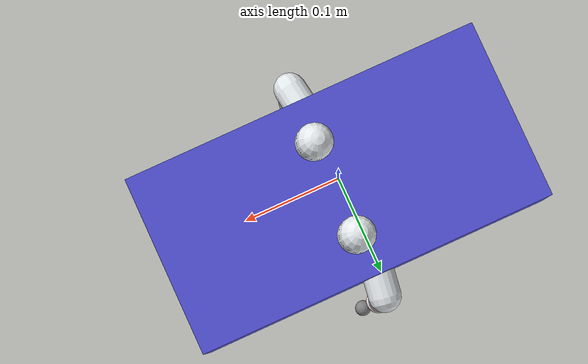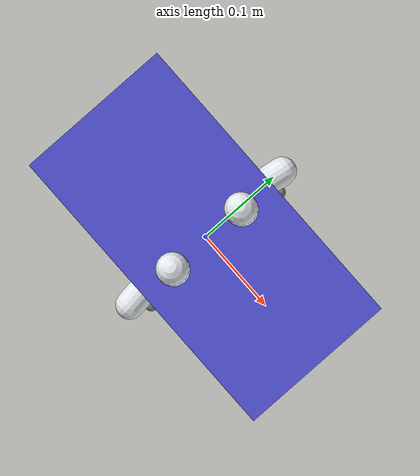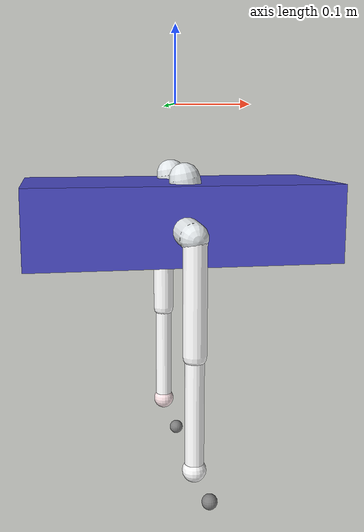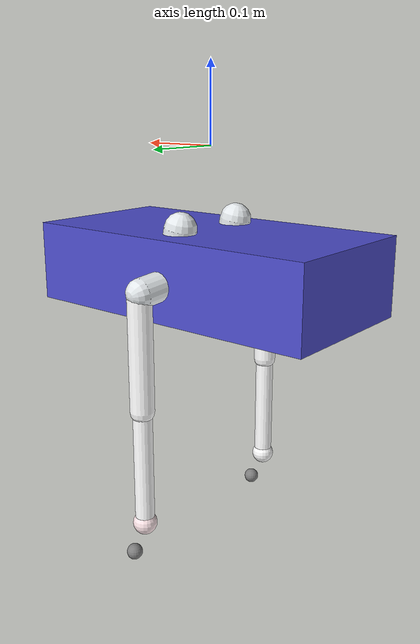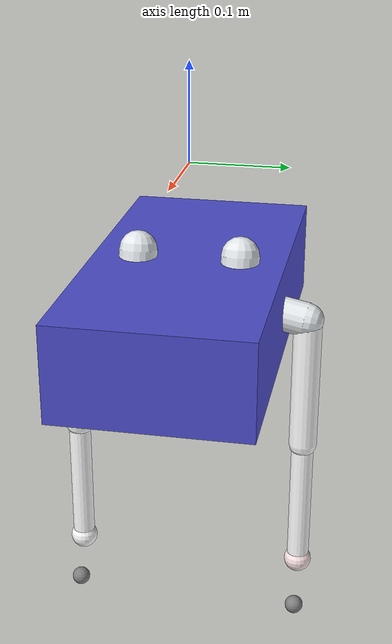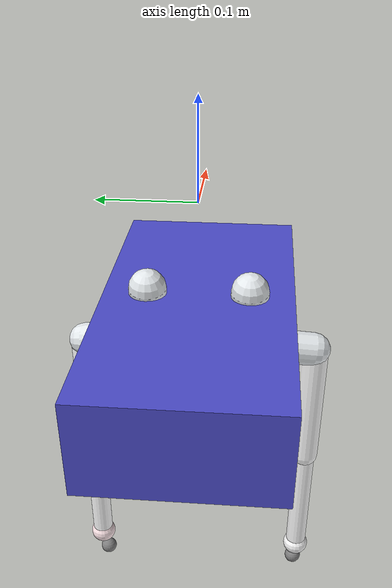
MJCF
<mujoco model="tinymal">
  <compiler angle="radian" coordinate="local" inertiafromgeom="true"/>
  <option timestep="0.0025" integrator="RK4"/>

  <default>
    <joint armature="0.01" damping="0.1" limited="true"/>
    <geom conaffinity="0" condim="3" friction="1 0.005 0.0001" margin="0.001"/>
    <motor ctrllimited="true" ctrlrange="-1 1"/>
  </default>

  <worldbody>
    <light cutoff="100" diffuse="1 1 1" dir="-0 0 -1.3" directional="true" exponent="1" pos="0 0 1.3" specular=".1 .1 .1"/>
    <geom conaffinity="1" condim="3" name="floor" pos="0 0 0" rgba="0.8 0.9 0.8 1" size="40 40 40" type="plane"/>

    <body name="tinymal" pos="0 0 -0.15" quat="1 0 0 0">
        <joint name="float_base" type="free"/>
        <inertial pos="-0.030485 0.000283 0.020881" quat="1 0 0 0" mass="2.3933" diaginertia="0.01079522 0.01240703 0.00996364"/>
        <geom type="box" size="0.2 0.1 0.05" rgba="0.3 0.3 0.8 1"/>
        <site name="imu" size="0.01" pos="0.0 0 0.0"/>

        <!-- Left Leg -->
        <body name="link_l_yaw" pos="0.0025357 0.053301 0.056145">
            <inertial pos="0.0031721 3.773e-05 -0.050777" quat="0.999618 -0.00349618 0.0274106 -0.000616623" mass="0.4033" diaginertia="0.00038287 0.00023882 0.00020175" />
            <joint name="joint_l_yaw" pos="0 0 0" axis="0 0 1" limited="true" range="-0.66 0.66"/>
            <geom type="capsule" fromto="0 0 0 0.01 0 -0.05" size="0.02" rgba="0.89804 0.91765 0.92941 1"/>
            <body name="link_l_roll" pos="-0.010958 0 -0.054965">
                <inertial pos="0.0090994 0.06545 -0.013394" quat="0.10126 0.439014 0.726345 0.519073" mass="0.46748" diaginertia="0.00037171 0.00037591 0.00036991" />
                <joint name="joint_l_roll" pos="0 0 0" axis="1 0 0" limited="true" range="-0.57 0.57"/>
                <geom type="capsule" fromto="0 0 0 0.01 0.07 -0.01" size="0.018" rgba="0.89804 0.91765 0.92941 1"/>
                <body name="link_l_pitch" pos="0.010958 0.071699 -0.014313">
                    <inertial pos="-0.0013138 0.0056716 -0.12051" quat="0.710837 -0.0349039 0.0167031 0.702291" mass="0.56676" diaginertia="0.00142093 0.00165467 0.00033524" />
                    <joint name="joint_l_pitch" pos="0 0 0" axis="0 1 0" limited="true" range="-1.57 0.57"/>
                    <geom type="capsule" fromto="0 0 0 0 0 -0.14" size="0.015" rgba="1 1 1 1"/>
                    <body name="link_l_knee" pos="0 0 -0.14738">
                        <inertial pos="-2.3595e-06 -0.0058981 -0.11387" quat="0.706202 0.0340951 -0.0341471 0.706364" mass="0.35345" diaginertia="0.00078577 0.00084805 0.00012468" />
                        <joint name="joint_l_knee" pos="0 0 0" axis="0 1 0" limited="true" range="0 2.57"/>
                        <geom type="capsule" fromto="0 0 0 0 0 -0.14" size="0.012" rgba="1 1 1 1"/>
                        <body name="link_l_ankle" pos="0 0 -0.14049">
                            <inertial pos="0.020853 0.0048146 -0.030186" quat="0.598198 0.414527 0.587571 0.353677" mass="0.17624" diaginertia="0.00007821 0.00029166 0.00027058" />
                            <joint name="joint_l_ankle" pos="0 0 0" axis="0 1 0" limited="true" range="-1.57 0.57"/>
                            <geom type="sphere" size="0.015" rgba="1 0.90588 0.91765 1"/>
                            <site name="left_ankle_site" pos="0.02 0 -0.05" size="0.01"/>
                        </body>
                    </body>
                </body>
            </body>
        </body>

        <!-- Right Leg -->
        <body name="link_r_yaw" pos="0.0025357 -0.053425 0.056145">
            <inertial pos="0.0031721 3.773e-05 -0.050777" quat="0.999618 -0.00349618 0.0274106 -0.000616623" mass="0.4033" diaginertia="0.00038287 0.00023882 0.00020175" />
            <joint name="joint_r_yaw" pos="0 0 0" axis="0 0 1" limited="true" range="-0.66 0.66"/>
            <geom type="capsule" fromto="0 0 0 0.01 0 -0.05" size="0.02" rgba="0.89804 0.91765 0.92941 1"/>
            <body name="link_r_roll" pos="-0.010958 0 -0.054965">
                <inertial pos="0.0090994 -0.06469 -0.013394" quat="0.510119 0.72481 0.450148 0.108613" mass="0.46748" diaginertia="0.00036594 0.00037591 0.00036414" />
                <joint name="joint_r_roll" pos="0 0 0" axis="1 0 0" limited="true" range="-0.57 0.57"/>
                <geom type="capsule" fromto="0 0 0 0.01 -0.07 -0.01" size="0.018" rgba="0.89804 0.91765 0.92941 1"/>
                <body name="link_r_pitch" pos="0.010958 -0.071575 -0.014313">
                    <inertial pos="-0.0013138 -0.0047951 -0.11962" quat="0.703677 0.0110046 -0.037368 0.709451" mass="0.56676" diaginertia="0.00146780 0.00170154 0.00033524" />
                    <joint name="joint_r_pitch" pos="0 0 0" axis="0 1 0" limited="true" range="-1.57 0.57"/>
                    <geom type="capsule" fromto="0 0 0 0 0 -0.14" size="0.015" rgba="1 1 1 1"/>
                    <body name="link_r_knee" pos="0 0 -0.14738">
                        <inertial pos="7.3527e-06 0.0067747 -0.11375" quat="0.706248 -0.0338418 0.0339636 0.706339" mass="0.35345" diaginertia="0.00078911 0.00085139 0.00012468" />
                        <joint name="joint_r_knee" pos="0 0 0" axis="0 1 0" limited="true" range="0 2.57"/>
                        <geom type="capsule" fromto="0 0 0 0 0 -0.14" size="0.012" rgba="1 1 1 1"/>
                        <body name="link_r_ankle" pos="0 0 -0.14049">
                            <inertial pos="0.014562 -0.0039946 -0.031306" quat="0.341262 0.618982 0.375042 0.599787" mass="0.175" diaginertia="0.00007468 0.00032189 0.00030379" />
                            <joint name="joint_r_ankle" pos="0 0 0" axis="0 1 0" limited="true" range="-1.57 0.57"/>
                            <geom type="sphere" size="0.015" rgba="1 1 1 1"/>
                            <site name="right_ankle_site" pos="0.02 0 -0.045" size="0.01"/>
                        </body>
                    </body>
                </body>
            </body>
        </body>
    </body>
  </worldbody>

  <actuator>
    <motor joint="joint_l_yaw" gear="50"/>
    <motor joint="joint_l_roll" gear="80"/>
    <motor joint="joint_l_pitch" gear="100"/>
    <motor joint="joint_l_knee" gear="80"/>
    <motor joint="joint_l_ankle" gear="50"/>
    <motor joint="joint_r_yaw" gear="50"/>
    <motor joint="joint_r_roll" gear="80"/>
    <motor joint="joint_r_pitch" gear="100"/>
    <motor joint="joint_r_knee" gear="80"/>
    <motor joint="joint_r_ankle" gear="50"/>
  </actuator>

  <sensor>
    <jointpos name="l_yaw_pos" joint="joint_l_yaw"/>
    <jointpos name="l_roll_pos" joint="joint_l_roll"/>
    <jointpos name="l_pitch_pos" joint="joint_l_pitch"/>
    <jointpos name="l_knee_pos" joint="joint_l_knee"/>
    <jointpos name="l_ankle_pos" joint="joint_l_ankle"/>
    <jointpos name="r_yaw_pos" joint="joint_r_yaw"/>
    <jointpos name="r_roll_pos" joint="joint_r_roll"/>
    <jointpos name="r_pitch_pos" joint="joint_r_pitch"/>
    <jointpos name="r_knee_pos" joint="joint_r_knee"/>
    <jointpos name="r_ankle_pos" joint="joint_r_ankle"/>
  </sensor>
</mujoco>
